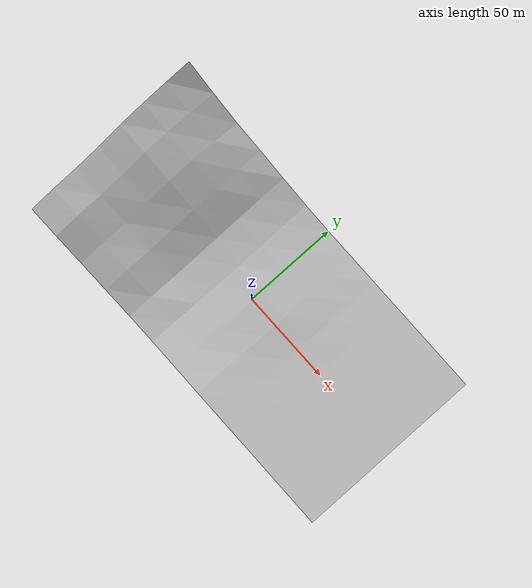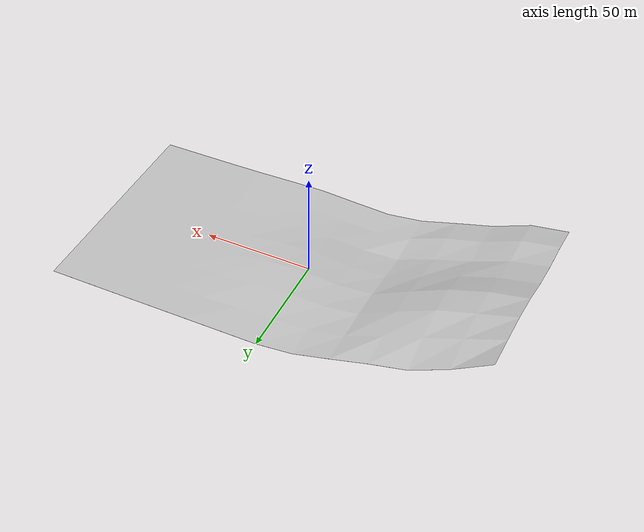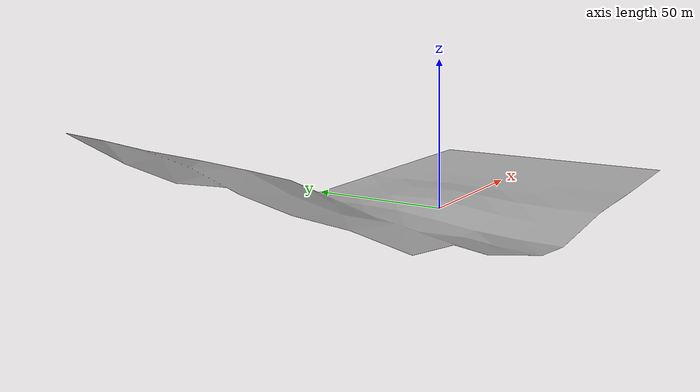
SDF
<?xml version="1.0" ?>
<sdf version="1.6">
  <model name="field">
    <static>true</static>
    <link name="link">
      <collision name="collision">
        <geometry>
          <mesh>
            <scale>1 1 1</scale>
            <uri>model://field/meshes/pole.stl</uri>
          </mesh>
           <surface>
            <friction>
              <ode>
                <mu>1.2</mu>
                <mu2>1.2</mu2>
              </ode>
            </friction>
          </surface>
        </geometry>
      </collision>
      <visual name="visual">
        <geometry>
          <mesh>
            <scale>1 1 1</scale>
            <uri>model://field/meshes/pole1.dae</uri>
          </mesh>
        </geometry>
      </visual>
    </link>
  </model>
</sdf>
